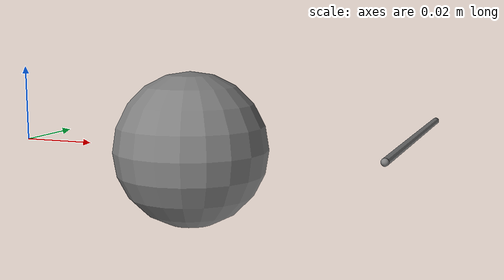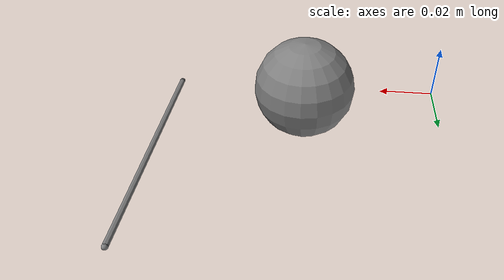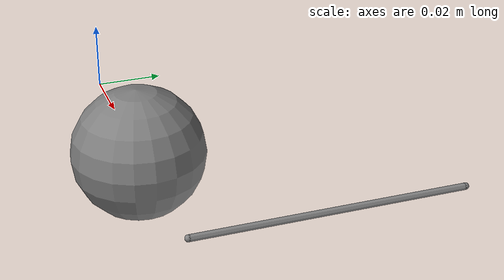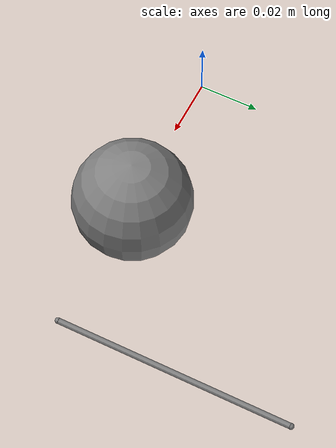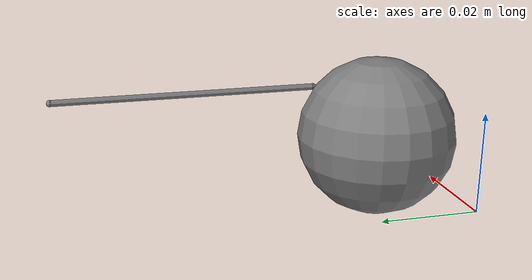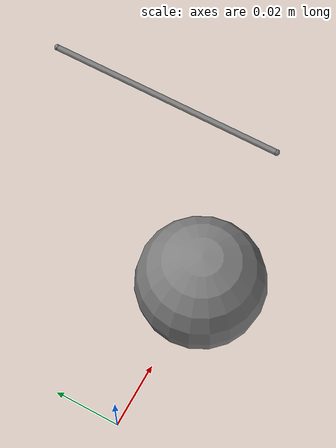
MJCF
<mujoco model="tendon-position">
  <compiler angle="radian"/>
  <worldbody>
    <body name="arm" pos="0 0 0">
      <joint name="j" type="hinge" axis="0 0 1" damping="0.3" range="-2.5 2.5"/>
      <geom name="g" type="sphere" size="0.02" pos="0.05 0 0" mass="1"/>
      <site name="tip" pos="0.1 0.08 0" size="0.001"/>
    </body>
    <body name="anchor_body" pos="0.1 0 0">
      <site name="anchor" pos="0 0 0" size="0.001"/>
    </body>
  </worldbody>
  <tendon>
    <fixed name="t"><joint joint="j" coef="1"/></fixed>
    <spatial name="s" width="0.001">
      <site site="anchor"/>
      <site site="tip"/>
    </spatial>
  </tendon>
  <actuator>
    <position name="a" tendon="t" kp="1" gear="2" ctrlrange="0 3"/>
    <motor name="sensor_motor" tendon="s" gear="1" ctrlrange="-1 1"/>
  </actuator>
</mujoco>
